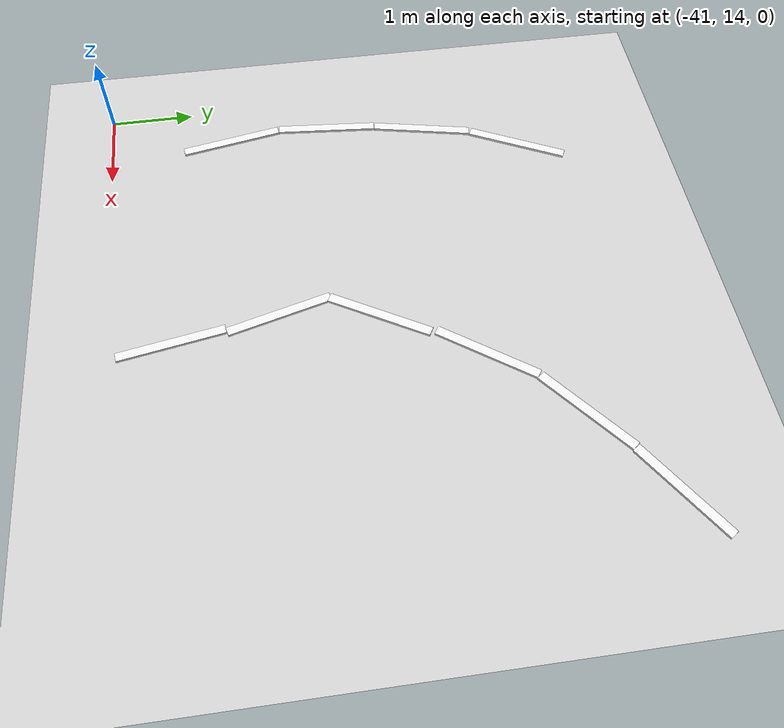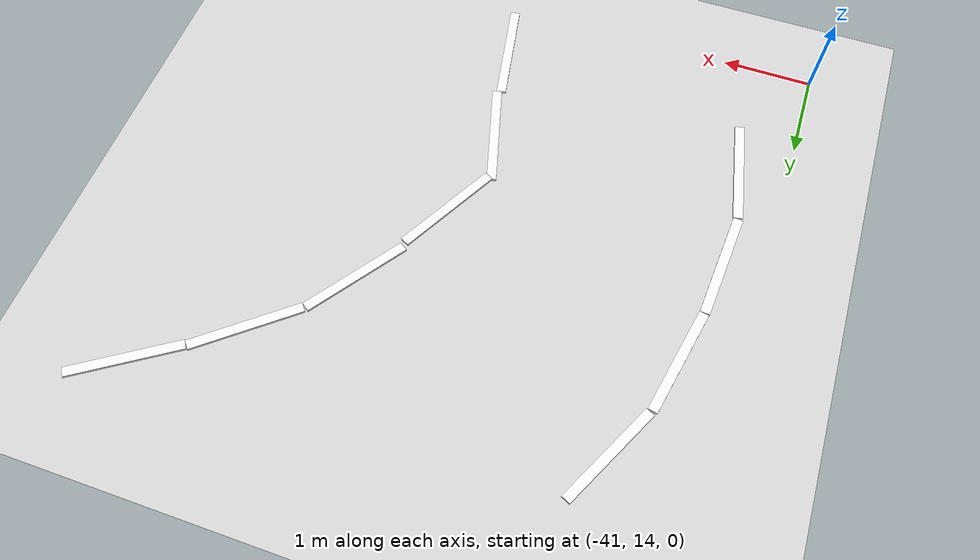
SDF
<sdf version="1.7">
 <world name="default">
  <model name="ground_plane">
   <static>1</static>
   <link name="link">
    <collision name="collision">
     <geometry><plane><normal>0 0 1</normal><size>100 100</size></plane></geometry>
     <surface><friction><ode><mu>100</mu><mu2>50</mu2></ode></friction></surface>
    </collision>
    <visual name="visual">
     <cast_shadows>0</cast_shadows>
     <geometry><plane><normal>0 0 1</normal><size>100 100</size></plane></geometry>
     <material>
      <script><uri>file://media/materials/scripts/gazebo.material</uri><name>Gazebo/Grey</name></script>
     </material>
    </visual>
   </link>
  </model>
  <model name="road_way_clone_clone_clone_0_clone_clone_clone_clone_0_clone_0_clone_0_clone_clone_clone_clone_clone_clone_clone_10_clone_2_clone_0_clone_1_clone_0_clone_0_clone_clone">
   <link name="link">
    <inertial>
     <mass>1</mass>
     <inertia>
      <ixx>0.166667</ixx>
      <ixy>0</ixy>
      <ixz>0</ixz>
      <iyy>0.166667</iyy>
      <iyz>0</iyz>
      <izz>0.166667</izz>
     </inertia>
    </inertial>
    <visual name="visual">
     <geometry><box><size>0.106644 1.22348 0.03129</size></box></geometry>
     <material>
      <script><name>Gazebo/White</name><uri>file://media/materials/scripts/gazebo.material</uri></script>
      <shader type="pixel"><normal_map>__default__</normal_map></shader>
      <ambient>1 1 1 1</ambient>
      <diffuse>1 1 1 1</diffuse>
      <specular>0 0 0 1</specular>
      <emissive>0 0 0 1</emissive>
     </material>
    </visual>
    <collision name="collision">
     <geometry><box><size>0.10644 1.22348 0.03129</size></box></geometry>
     <surface>
      <friction>
       <ode><mu>1</mu><mu2>1</mu2><fdir1>0 0 0</fdir1><slip1>0</slip1><slip2>0</slip2></ode>
       <torsional>
        <coefficient>1</coefficient>
        <patch_radius>0</patch_radius>
        <surface_radius>0</surface_radius>
        <use_patch_radius>1</use_patch_radius>
        <ode><slip>0</slip></ode>
       </torsional>
      </friction>
      <bounce><restitution_coefficient>0</restitution_coefficient><threshold>1e+06</threshold></bounce>
      <contact>
       <collide_without_contact>0</collide_without_contact>
       <collide_without_contact_bitmask>1</collide_without_contact_bitmask>
       <collide_bitmask>1</collide_bitmask>
       <ode>
        <soft_cfm>0</soft_cfm>
        <soft_erp>0.2</soft_erp>
        <kp>1e+13</kp>
        <kd>1</kd>
        <max_vel>0.01</max_vel>
        <min_depth>0</min_depth>
       </ode>
       <bullet>
        <split_impulse>1</split_impulse>
        <split_impulse_penetration_threshold>-0.01</split_impulse_penetration_threshold>
        <soft_cfm>0</soft_cfm>
        <soft_erp>0.2</soft_erp>
        <kp>1e+13</kp>
        <kd>1</kd>
       </bullet>
      </contact>
     </surface>
    </collision>
   </link>
   <static>0</static>
   <pose>-35.1195 19.7279 0.015639 -1.1e-05 -0 2.15629</pose>
  </model>
  <model name="road_way_clone_clone_clone_0_clone_clone_clone_clone_0_clone_0_clone_0_clone_clone_clone_clone_clone_clone_clone_10_clone_2_clone_0_clone_1_clone_0_clone_0_clone_clone_0_clone">
   <link name="link">
    <inertial>
     <mass>1</mass>
     <inertia>
      <ixx>0.166667</ixx>
      <ixy>0</ixy>
      <ixz>0</ixz>
      <iyy>0.166667</iyy>
      <iyz>0</iyz>
      <izz>0.166667</izz>
     </inertia>
    </inertial>
    <visual name="visual">
     <geometry><box><size>0.106644 1.22348 0.03129</size></box></geometry>
     <material>
      <script><name>Gazebo/White</name><uri>file://media/materials/scripts/gazebo.material</uri></script>
      <shader type="pixel"><normal_map>__default__</normal_map></shader>
      <ambient>1 1 1 1</ambient>
      <diffuse>1 1 1 1</diffuse>
      <specular>0 0 0 1</specular>
      <emissive>0 0 0 1</emissive>
     </material>
    </visual>
    <collision name="collision">
     <geometry><box><size>0.10644 1.22348 0.03129</size></box></geometry>
     <surface>
      <friction>
       <ode><mu>1</mu><mu2>1</mu2><fdir1>0 0 0</fdir1><slip1>0</slip1><slip2>0</slip2></ode>
       <torsional>
        <coefficient>1</coefficient>
        <patch_radius>0</patch_radius>
        <surface_radius>0</surface_radius>
        <use_patch_radius>1</use_patch_radius>
        <ode><slip>0</slip></ode>
       </torsional>
      </friction>
      <bounce><restitution_coefficient>0</restitution_coefficient><threshold>1e+06</threshold></bounce>
      <contact>
       <collide_without_contact>0</collide_without_contact>
       <collide_without_contact_bitmask>1</collide_without_contact_bitmask>
       <collide_bitmask>1</collide_bitmask>
       <ode>
        <soft_cfm>0</soft_cfm>
        <soft_erp>0.2</soft_erp>
        <kp>1e+13</kp>
        <kd>1</kd>
        <max_vel>0.01</max_vel>
        <min_depth>0</min_depth>
       </ode>
       <bullet>
        <split_impulse>1</split_impulse>
        <split_impulse_penetration_threshold>-0.01</split_impulse_penetration_threshold>
        <soft_cfm>0</soft_cfm>
        <soft_erp>0.2</soft_erp>
        <kp>1e+13</kp>
        <kd>1</kd>
       </bullet>
      </contact>
     </surface>
    </collision>
   </link>
   <static>0</static>
   <pose>-36.1129 19.0082 0.015638 1.1e-05 -0 2.26078</pose>
  </model>
  <model name="road_way_clone_clone_clone_0_clone_clone_clone_clone_0_clone_0_clone_0_clone_clone_clone_clone_clone_clone_clone_10_clone_2_clone_0_clone_1_clone_0_clone_0_clone_clone_0_clone_1_clone">
   <link name="link">
    <inertial>
     <mass>1</mass>
     <inertia>
      <ixx>0.166667</ixx>
      <ixy>0</ixy>
      <ixz>0</ixz>
      <iyy>0.166667</iyy>
      <iyz>0</iyz>
      <izz>0.166667</izz>
     </inertia>
    </inertial>
    <visual name="visual">
     <geometry><box><size>0.106644 1.22348 0.03129</size></box></geometry>
     <material>
      <script><name>Gazebo/White</name><uri>file://media/materials/scripts/gazebo.material</uri></script>
      <shader type="pixel"><normal_map>__default__</normal_map></shader>
      <ambient>1 1 1 1</ambient>
      <diffuse>1 1 1 1</diffuse>
      <specular>0 0 0 1</specular>
      <emissive>0 0 0 1</emissive>
     </material>
    </visual>
    <collision name="collision">
     <geometry><box><size>0.10644 1.22348 0.03129</size></box></geometry>
     <surface>
      <friction>
       <ode><mu>1</mu><mu2>1</mu2><fdir1>0 0 0</fdir1><slip1>0</slip1><slip2>0</slip2></ode>
       <torsional>
        <coefficient>1</coefficient>
        <patch_radius>0</patch_radius>
        <surface_radius>0</surface_radius>
        <use_patch_radius>1</use_patch_radius>
        <ode><slip>0</slip></ode>
       </torsional>
      </friction>
      <bounce><restitution_coefficient>0</restitution_coefficient><threshold>1e+06</threshold></bounce>
      <contact>
       <collide_without_contact>0</collide_without_contact>
       <collide_without_contact_bitmask>1</collide_without_contact_bitmask>
       <collide_bitmask>1</collide_bitmask>
       <ode>
        <soft_cfm>0</soft_cfm>
        <soft_erp>0.2</soft_erp>
        <kp>1e+13</kp>
        <kd>1</kd>
        <max_vel>0.01</max_vel>
        <min_depth>0</min_depth>
       </ode>
       <bullet>
        <split_impulse>1</split_impulse>
        <split_impulse_penetration_threshold>-0.01</split_impulse_penetration_threshold>
        <soft_cfm>0</soft_cfm>
        <soft_erp>0.2</soft_erp>
        <kp>1e+13</kp>
        <kd>1</kd>
       </bullet>
      </contact>
     </surface>
    </collision>
   </link>
   <static>0</static>
   <pose>-39.9549 19.1036 0.015638 1.1e-05 -0 2.68563</pose>
  </model>
  <model name="road_way_clone_clone_clone_0_clone_clone_clone_clone_0_clone_0_clone_0_clone_clone_clone_clone_clone_clone_clone_10_clone_2_clone_0_clone_1_clone_0_clone_0_clone_clone_0_clone_1_clone_clone">
   <link name="link">
    <inertial>
     <mass>1</mass>
     <inertia>
      <ixx>0.166667</ixx>
      <ixy>0</ixy>
      <ixz>0</ixz>
      <iyy>0.166667</iyy>
      <iyz>0</iyz>
      <izz>0.166667</izz>
     </inertia>
    </inertial>
    <visual name="visual">
     <geometry><box><size>0.106644 1.22348 0.03129</size></box></geometry>
     <material>
      <script><name>Gazebo/White</name><uri>file://media/materials/scripts/gazebo.material</uri></script>
      <shader type="pixel"><normal_map>__default__</normal_map></shader>
      <ambient>1 1 1 1</ambient>
      <diffuse>1 1 1 1</diffuse>
      <specular>0 0 0 1</specular>
      <emissive>0 0 0 1</emissive>
     </material>
    </visual>
    <collision name="collision">
     <geometry><box><size>0.10644 1.22348 0.03129</size></box></geometry>
     <surface>
      <friction>
       <ode><mu>1</mu><mu2>1</mu2><fdir1>0 0 0</fdir1><slip1>0</slip1><slip2>0</slip2></ode>
       <torsional>
        <coefficient>1</coefficient>
        <patch_radius>0</patch_radius>
        <surface_radius>0</surface_radius>
        <use_patch_radius>1</use_patch_radius>
        <ode><slip>0</slip></ode>
       </torsional>
      </friction>
      <bounce><restitution_coefficient>0</restitution_coefficient><threshold>1e+06</threshold></bounce>
      <contact>
       <collide_without_contact>0</collide_without_contact>
       <collide_without_contact_bitmask>1</collide_without_contact_bitmask>
       <collide_bitmask>1</collide_bitmask>
       <ode>
        <soft_cfm>0</soft_cfm>
        <soft_erp>0.2</soft_erp>
        <kp>1e+13</kp>
        <kd>1</kd>
        <max_vel>0.01</max_vel>
        <min_depth>0</min_depth>
       </ode>
       <bullet>
        <split_impulse>1</split_impulse>
        <split_impulse_penetration_threshold>-0.01</split_impulse_penetration_threshold>
        <soft_cfm>0</soft_cfm>
        <soft_erp>0.2</soft_erp>
        <kp>1e+13</kp>
        <kd>1</kd>
       </bullet>
      </contact>
     </surface>
    </collision>
   </link>
   <static>0</static>
   <pose>-40.362 17.9414 0.015638 -1.1e-05 -0 2.93982</pose>
  </model>
  <model name="road_way_clone_clone_clone_0_clone_clone_clone_clone_0_clone_0_clone_0_clone_clone_clone_clone_clone_clone_clone_10_clone_2_clone_0_clone_1_clone_0_clone_0_clone_clone_0_clone_1_clone_0">
   <link name="link">
    <inertial>
     <mass>1</mass>
     <inertia>
      <ixx>0.166667</ixx>
      <ixy>0</ixy>
      <ixz>0</ixz>
      <iyy>0.166667</iyy>
      <iyz>0</iyz>
      <izz>0.166667</izz>
     </inertia>
    </inertial>
    <visual name="visual">
     <geometry><box><size>0.106644 1.22348 0.03129</size></box></geometry>
     <material>
      <script><name>Gazebo/White</name><uri>file://media/materials/scripts/gazebo.material</uri></script>
      <shader type="pixel"><normal_map>__default__</normal_map></shader>
      <ambient>1 1 1 1</ambient>
      <diffuse>1 1 1 1</diffuse>
      <specular>0 0 0 1</specular>
      <emissive>0 0 0 1</emissive>
     </material>
    </visual>
    <collision name="collision">
     <geometry><box><size>0.10644 1.22348 0.03129</size></box></geometry>
     <surface>
      <friction>
       <ode><mu>1</mu><mu2>1</mu2><fdir1>0 0 0</fdir1><slip1>0</slip1><slip2>0</slip2></ode>
       <torsional>
        <coefficient>1</coefficient>
        <patch_radius>0</patch_radius>
        <surface_radius>0</surface_radius>
        <use_patch_radius>1</use_patch_radius>
        <ode><slip>0</slip></ode>
       </torsional>
      </friction>
      <bounce><restitution_coefficient>0</restitution_coefficient><threshold>1e+06</threshold></bounce>
      <contact>
       <collide_without_contact>0</collide_without_contact>
       <collide_without_contact_bitmask>1</collide_without_contact_bitmask>
       <collide_bitmask>1</collide_bitmask>
       <ode>
        <soft_cfm>0</soft_cfm>
        <soft_erp>0.2</soft_erp>
        <kp>1e+13</kp>
        <kd>1</kd>
        <max_vel>0.01</max_vel>
        <min_depth>0</min_depth>
       </ode>
       <bullet>
        <split_impulse>1</split_impulse>
        <split_impulse_penetration_threshold>-0.01</split_impulse_penetration_threshold>
        <soft_cfm>0</soft_cfm>
        <soft_erp>0.2</soft_erp>
        <kp>1e+13</kp>
        <kd>1</kd>
       </bullet>
      </contact>
     </surface>
    </collision>
   </link>
   <static>0</static>
   <pose>-36.9498 18.1129 0.015638 1.1e-05 -0 2.53262</pose>
  </model>
  <model name="road_way_clone_clone_clone_0_clone_clone_clone_clone_0_clone_0_clone_0_clone_clone_clone_clone_clone_clone_clone_10_clone_2_clone_0_clone_1_clone_0_clone_0_clone_clone_0_clone_1_clone_clone_0">
   <link name="link">
    <inertial>
     <mass>1</mass>
     <inertia>
      <ixx>0.166667</ixx>
      <ixy>0</ixy>
      <ixz>0</ixz>
      <iyy>0.166667</iyy>
      <iyz>0</iyz>
      <izz>0.166667</izz>
     </inertia>
    </inertial>
    <visual name="visual">
     <geometry><box><size>0.106644 1.22348 0.03129</size></box></geometry>
     <material>
      <script><name>Gazebo/White</name><uri>file://media/materials/scripts/gazebo.material</uri></script>
      <shader type="pixel"><normal_map>__default__</normal_map></shader>
      <ambient>1 1 1 1</ambient>
      <diffuse>1 1 1 1</diffuse>
      <specular>0 0 0 1</specular>
      <emissive>0 0 0 1</emissive>
     </material>
    </visual>
    <collision name="collision">
     <geometry><box><size>0.10644 1.22348 0.03129</size></box></geometry>
     <surface>
      <friction>
       <ode><mu>1</mu><mu2>1</mu2><fdir1>0 0 0</fdir1><slip1>0</slip1><slip2>0</slip2></ode>
       <torsional>
        <coefficient>1</coefficient>
        <patch_radius>0</patch_radius>
        <surface_radius>0</surface_radius>
        <use_patch_radius>1</use_patch_radius>
        <ode><slip>0</slip></ode>
       </torsional>
      </friction>
      <bounce><restitution_coefficient>0</restitution_coefficient><threshold>1e+06</threshold></bounce>
      <contact>
       <collide_without_contact>0</collide_without_contact>
       <collide_without_contact_bitmask>1</collide_without_contact_bitmask>
       <collide_bitmask>1</collide_bitmask>
       <ode>
        <soft_cfm>0</soft_cfm>
        <soft_erp>0.2</soft_erp>
        <kp>1e+13</kp>
        <kd>1</kd>
        <max_vel>0.01</max_vel>
        <min_depth>0</min_depth>
       </ode>
       <bullet>
        <split_impulse>1</split_impulse>
        <split_impulse_penetration_threshold>-0.01</split_impulse_penetration_threshold>
        <soft_cfm>0</soft_cfm>
        <soft_erp>0.2</soft_erp>
        <kp>1e+13</kp>
        <kd>1</kd>
       </bullet>
      </contact>
     </surface>
    </collision>
   </link>
   <static>0</static>
   <pose>-37.5818 17.0186 0.029602 0.022855 -0 2.63969</pose>
  </model>
  <model name="road_way_clone_clone_clone_0_clone_clone_clone_clone_0_clone_0_clone_0_clone_clone_clone_clone_clone_clone_clone_10_clone_2_clone_0_clone_1_clone_0_clone_0_clone_clone_0_clone_1_clone_clone_clone">
   <link name="link">
    <inertial>
     <mass>1</mass>
     <inertia>
      <ixx>0.166667</ixx>
      <ixy>0</ixy>
      <ixz>0</ixz>
      <iyy>0.166667</iyy>
      <iyz>0</iyz>
      <izz>0.166667</izz>
     </inertia>
    </inertial>
    <visual name="visual">
     <geometry><box><size>0.106644 1.22348 0.03129</size></box></geometry>
     <material>
      <script><name>Gazebo/White</name><uri>file://media/materials/scripts/gazebo.material</uri></script>
      <shader type="pixel"><normal_map>__default__</normal_map></shader>
      <ambient>1 1 1 1</ambient>
      <diffuse>1 1 1 1</diffuse>
      <specular>0 0 0 1</specular>
      <emissive>0 0 0 1</emissive>
     </material>
    </visual>
    <collision name="collision">
     <geometry><box><size>0.10644 1.22348 0.03129</size></box></geometry>
     <surface>
      <friction>
       <ode><mu>1</mu><mu2>1</mu2><fdir1>0 0 0</fdir1><slip1>0</slip1><slip2>0</slip2></ode>
       <torsional>
        <coefficient>1</coefficient>
        <patch_radius>0</patch_radius>
        <surface_radius>0</surface_radius>
        <use_patch_radius>1</use_patch_radius>
        <ode><slip>0</slip></ode>
       </torsional>
      </friction>
      <bounce><restitution_coefficient>0</restitution_coefficient><threshold>1e+06</threshold></bounce>
      <contact>
       <collide_without_contact>0</collide_without_contact>
       <collide_without_contact_bitmask>1</collide_without_contact_bitmask>
       <collide_bitmask>1</collide_bitmask>
       <ode>
        <soft_cfm>0</soft_cfm>
        <soft_erp>0.2</soft_erp>
        <kp>1e+13</kp>
        <kd>1</kd>
        <max_vel>0.01</max_vel>
        <min_depth>0</min_depth>
       </ode>
       <bullet>
        <split_impulse>1</split_impulse>
        <split_impulse_penetration_threshold>-0.01</split_impulse_penetration_threshold>
        <soft_cfm>0</soft_cfm>
        <soft_erp>0.2</soft_erp>
        <kp>1e+13</kp>
        <kd>1</kd>
       </bullet>
      </contact>
     </surface>
    </collision>
   </link>
   <static>0</static>
   <pose>-37.7483 15.9072 0.013938 0.003957 -0.00034 -2.87639</pose>
  </model>
  <model name="road_way_clone_clone_clone_0_clone_clone_clone_clone_0_clone_0_clone_0_clone_clone_clone_clone_clone_clone_clone_10_clone_2_clone_0_clone_1_clone_0_clone_0_clone_clone_0_clone_1_clone_clone_clone_0">
   <link name="link">
    <inertial>
     <mass>1</mass>
     <inertia>
      <ixx>0.166667</ixx>
      <ixy>0</ixy>
      <ixz>0</ixz>
      <iyy>0.166667</iyy>
      <iyz>0</iyz>
      <izz>0.166667</izz>
     </inertia>
    </inertial>
    <visual name="visual">
     <geometry><box><size>0.106644 1.22348 0.03129</size></box></geometry>
     <material>
      <script><name>Gazebo/White</name><uri>file://media/materials/scripts/gazebo.material</uri></script>
      <shader type="pixel"><normal_map>__default__</normal_map></shader>
      <ambient>1 1 1 1</ambient>
      <diffuse>1 1 1 1</diffuse>
      <specular>0 0 0 1</specular>
      <emissive>0 0 0 1</emissive>
     </material>
    </visual>
    <collision name="collision">
     <geometry><box><size>0.10644 1.22348 0.03129</size></box></geometry>
     <surface>
      <friction>
       <ode><mu>1</mu><mu2>1</mu2><fdir1>0 0 0</fdir1><slip1>0</slip1><slip2>0</slip2></ode>
       <torsional>
        <coefficient>1</coefficient>
        <patch_radius>0</patch_radius>
        <surface_radius>0</surface_radius>
        <use_patch_radius>1</use_patch_radius>
        <ode><slip>0</slip></ode>
       </torsional>
      </friction>
      <bounce><restitution_coefficient>0</restitution_coefficient><threshold>1e+06</threshold></bounce>
      <contact>
       <collide_without_contact>0</collide_without_contact>
       <collide_without_contact_bitmask>1</collide_without_contact_bitmask>
       <collide_bitmask>1</collide_bitmask>
       <ode>
        <soft_cfm>0</soft_cfm>
        <soft_erp>0.2</soft_erp>
        <kp>1e+13</kp>
        <kd>1</kd>
        <max_vel>0.01</max_vel>
        <min_depth>0</min_depth>
       </ode>
       <bullet>
        <split_impulse>1</split_impulse>
        <split_impulse_penetration_threshold>-0.01</split_impulse_penetration_threshold>
        <soft_cfm>0</soft_cfm>
        <soft_erp>0.2</soft_erp>
        <kp>1e+13</kp>
        <kd>1</kd>
       </bullet>
      </contact>
     </surface>
    </collision>
   </link>
   <static>0</static>
   <pose>-40.5389 16.7253 0.015638 1.1e-05 -0 3.0619</pose>
  </model>
  <model name="road_way_clone_clone_clone_0_clone_clone_clone_clone_0_clone_0_clone_0_clone_clone_clone_clone_clone_clone_clone_10_clone_2_clone_0_clone_1_clone_0_clone_0_clone_clone_0_clone_1_clone_clone_clone_clone">
   <link name="link">
    <inertial>
     <mass>1</mass>
     <inertia>
      <ixx>0.166667</ixx>
      <ixy>0</ixy>
      <ixz>0</ixz>
      <iyy>0.166667</iyy>
      <iyz>0</iyz>
      <izz>0.166667</izz>
     </inertia>
    </inertial>
    <visual name="visual">
     <geometry><box><size>0.106644 1.22348 0.03129</size></box></geometry>
     <material>
      <script><name>Gazebo/White</name><uri>file://media/materials/scripts/gazebo.material</uri></script>
      <shader type="pixel"><normal_map>__default__</normal_map></shader>
      <ambient>1 1 1 1</ambient>
      <diffuse>1 1 1 1</diffuse>
      <specular>0 0 0 1</specular>
      <emissive>0 0 0 1</emissive>
     </material>
    </visual>
    <collision name="collision">
     <geometry><box><size>0.10644 1.22348 0.03129</size></box></geometry>
     <surface>
      <friction>
       <ode><mu>1</mu><mu2>1</mu2><fdir1>0 0 0</fdir1><slip1>0</slip1><slip2>0</slip2></ode>
       <torsional>
        <coefficient>1</coefficient>
        <patch_radius>0</patch_radius>
        <surface_radius>0</surface_radius>
        <use_patch_radius>1</use_patch_radius>
        <ode><slip>0</slip></ode>
       </torsional>
      </friction>
      <bounce><restitution_coefficient>0</restitution_coefficient><threshold>1e+06</threshold></bounce>
      <contact>
       <collide_without_contact>0</collide_without_contact>
       <collide_without_contact_bitmask>1</collide_without_contact_bitmask>
       <collide_bitmask>1</collide_bitmask>
       <ode>
        <soft_cfm>0</soft_cfm>
        <soft_erp>0.2</soft_erp>
        <kp>1e+13</kp>
        <kd>1</kd>
        <max_vel>0.01</max_vel>
        <min_depth>0</min_depth>
       </ode>
       <bullet>
        <split_impulse>1</split_impulse>
        <split_impulse_penetration_threshold>-0.01</split_impulse_penetration_threshold>
        <soft_cfm>0</soft_cfm>
        <soft_erp>0.2</soft_erp>
        <kp>1e+13</kp>
        <kd>1</kd>
       </bullet>
      </contact>
     </surface>
    </collision>
   </link>
   <static>0</static>
   <pose>-37.5261 14.7017 0.015604 2.8e-05 -0 -2.9683</pose>
  </model>
  <model name="road_way_clone_clone_clone_0_clone_clone_clone_clone_0_clone_0_clone_0_clone_clone_clone_clone_clone_clone_clone_10_clone_2_clone_0_clone_1_clone_0_clone_0_clone_clone_0_clone_1_clone_clone_clone_clone_0">
   <link name="link">
    <inertial>
     <mass>1</mass>
     <inertia>
      <ixx>0.166667</ixx>
      <ixy>0</ixy>
      <ixz>0</ixz>
      <iyy>0.166667</iyy>
      <iyz>0</iyz>
      <izz>0.166667</izz>
     </inertia>
    </inertial>
    <visual name="visual">
     <geometry><box><size>0.106644 1.22348 0.03129</size></box></geometry>
     <material>
      <script><name>Gazebo/White</name><uri>file://media/materials/scripts/gazebo.material</uri></script>
      <shader type="pixel"><normal_map>__default__</normal_map></shader>
      <ambient>1 1 1 1</ambient>
      <diffuse>1 1 1 1</diffuse>
      <specular>0 0 0 1</specular>
      <emissive>0 0 0 1</emissive>
     </material>
    </visual>
    <collision name="collision">
     <geometry><box><size>0.10644 1.22348 0.03129</size></box></geometry>
     <surface>
      <friction>
       <ode><mu>1</mu><mu2>1</mu2><fdir1>0 0 0</fdir1><slip1>0</slip1><slip2>0</slip2></ode>
       <torsional>
        <coefficient>1</coefficient>
        <patch_radius>0</patch_radius>
        <surface_radius>0</surface_radius>
        <use_patch_radius>1</use_patch_radius>
        <ode><slip>0</slip></ode>
       </torsional>
      </friction>
      <bounce><restitution_coefficient>0</restitution_coefficient><threshold>1e+06</threshold></bounce>
      <contact>
       <collide_without_contact>0</collide_without_contact>
       <collide_without_contact_bitmask>1</collide_without_contact_bitmask>
       <collide_bitmask>1</collide_bitmask>
       <ode>
        <soft_cfm>0</soft_cfm>
        <soft_erp>0.2</soft_erp>
        <kp>1e+13</kp>
        <kd>1</kd>
        <max_vel>0.01</max_vel>
        <min_depth>0</min_depth>
       </ode>
       <bullet>
        <split_impulse>1</split_impulse>
        <split_impulse_penetration_threshold>-0.01</split_impulse_penetration_threshold>
        <soft_cfm>0</soft_cfm>
        <soft_erp>0.2</soft_erp>
        <kp>1e+13</kp>
        <kd>1</kd>
       </bullet>
      </contact>
     </surface>
    </collision>
   </link>
   <static>0</static>
   <pose>-40.4687 15.5012 0.015638 1.1e-05 -0 -2.95634</pose>
  </model>
 </world>
</sdf>
